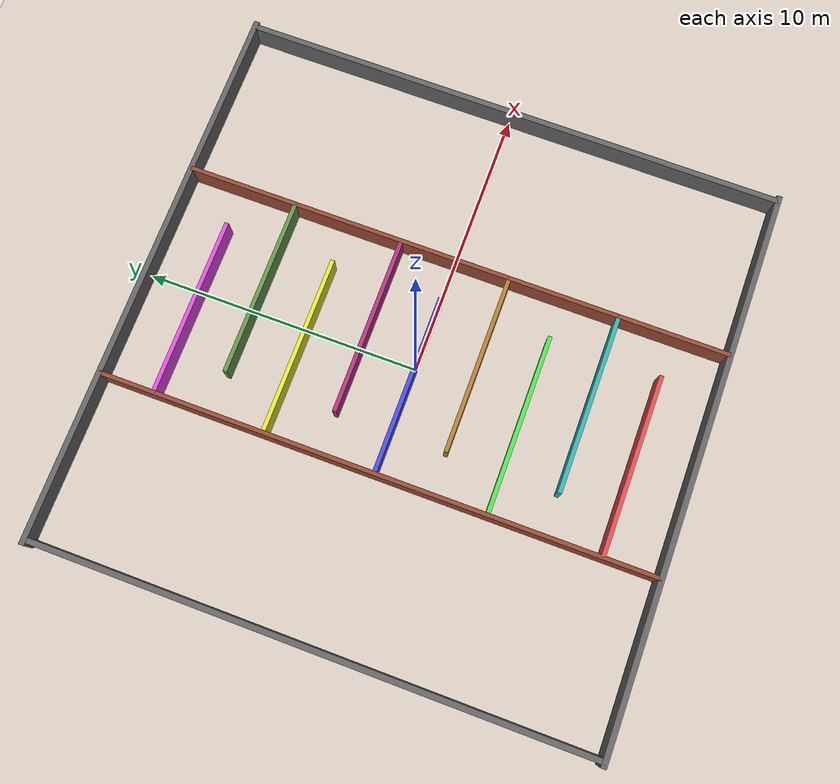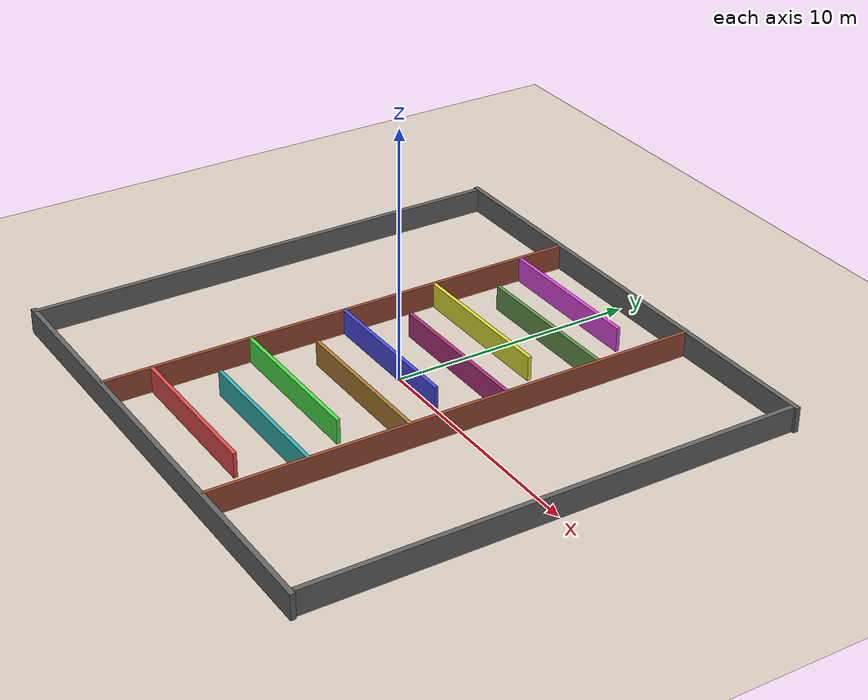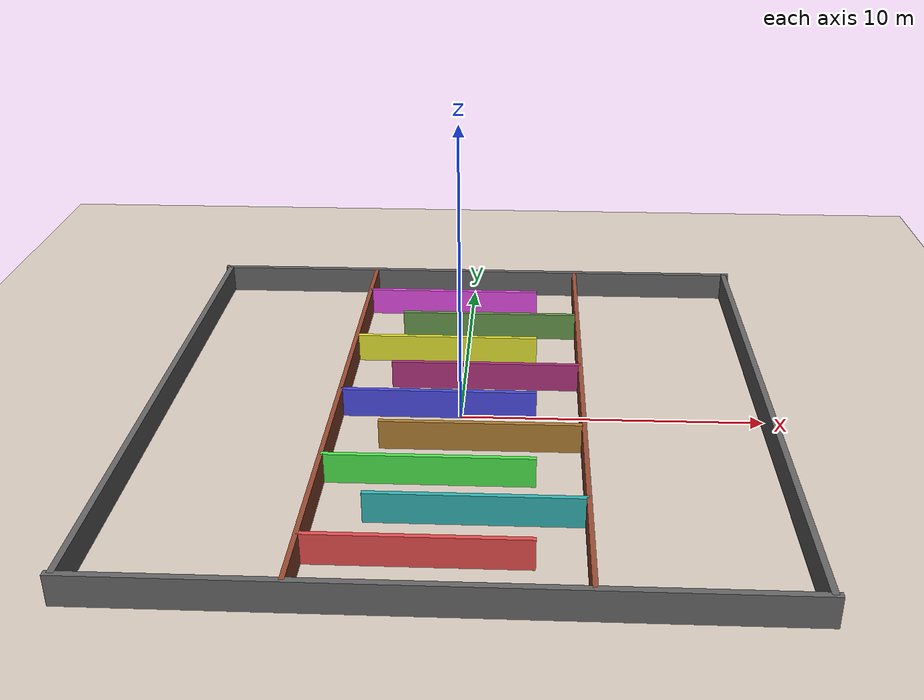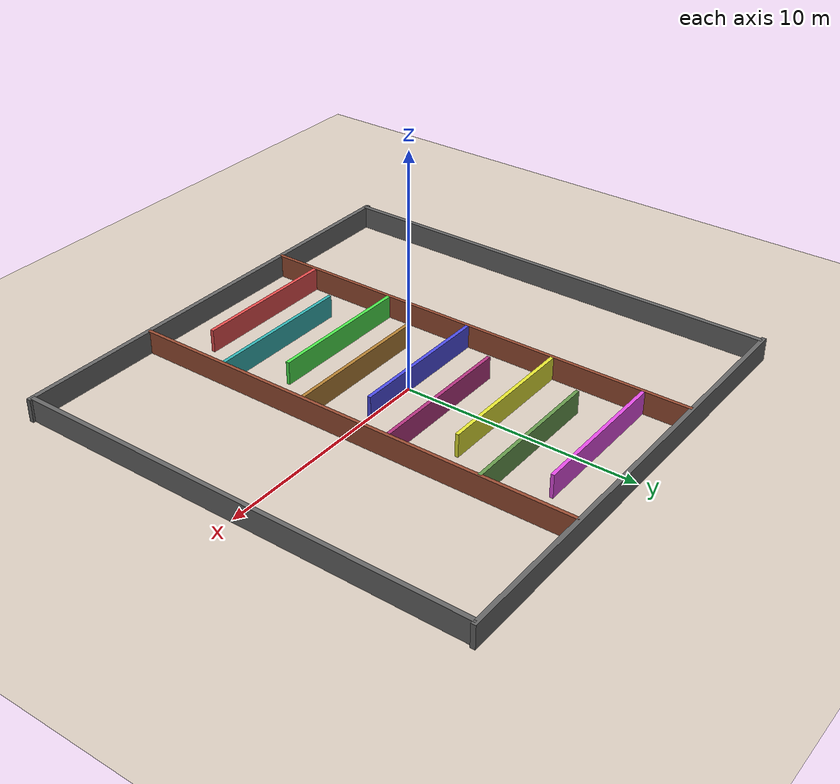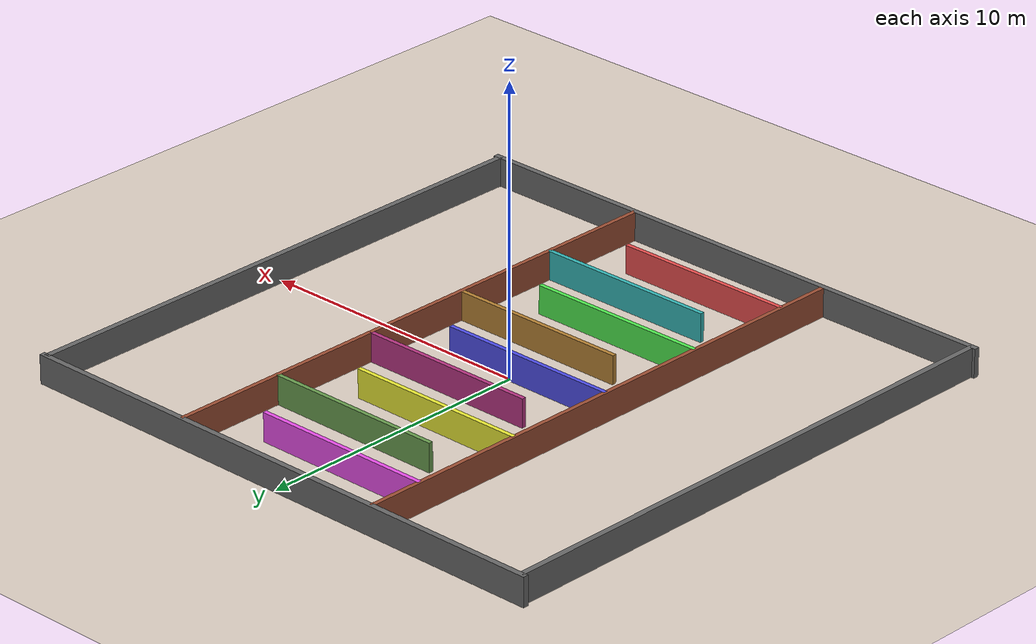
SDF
<?xml version="1.0" ?>
<!-- WORLD: Zigzag — Snaking corridor of zigzag walls -->
<sdf version="1.6">
  <world name="default">
    <physics name="1ms" type="ignored"><max_step_size>0.001</max_step_size><real_time_factor>1.0</real_time_factor></physics>
    <plugin filename="libignition-gazebo-physics-system.so" name="ignition::gazebo::systems::Physics"/>
    <plugin filename="libignition-gazebo-user-commands-system.so" name="ignition::gazebo::systems::UserCommands"/>
    <plugin filename="libignition-gazebo-scene-broadcaster-system.so" name="ignition::gazebo::systems::SceneBroadcaster"/>
    <light type="directional" name="sun"><cast_shadows>true</cast_shadows><pose>0 0 10 0 0 0</pose><diffuse>0.85 0.85 0.85 1</diffuse><specular>0.2 0.2 0.2 1</specular><attenuation><range>1000</range><constant>0.9</constant><linear>0.01</linear><quadratic>0.001</quadratic></attenuation><direction>-0.5 0.1 -0.9</direction></light>
    <model name="ground"><static>true</static><link name="l"><collision name="c"><geometry><plane><normal>0 0 1</normal><size>100 100</size></plane></geometry></collision><visual name="v"><geometry><plane><normal>0 0 1</normal><size>100 100</size></plane></geometry><material><ambient>0.85 0.8 0.75 1</ambient><diffuse>0.85 0.8 0.75 1</diffuse></material></visual></link></model>
    <model name="wn"><static>true</static><pose>0 10 0.5 0 0 0</pose><link name="l"><collision name="c"><geometry><box><size>20.4 0.2 1</size></box></geometry></collision><visual name="v"><geometry><box><size>20.4 0.2 1</size></box></geometry><material><ambient>0.4 0.4 0.4 1</ambient><diffuse>0.4 0.4 0.4 1</diffuse></material></visual></link></model>
    <model name="ws"><static>true</static><pose>0 -10 0.5 0 0 0</pose><link name="l"><collision name="c"><geometry><box><size>20.4 0.2 1</size></box></geometry></collision><visual name="v"><geometry><box><size>20.4 0.2 1</size></box></geometry><material><ambient>0.4 0.4 0.4 1</ambient><diffuse>0.4 0.4 0.4 1</diffuse></material></visual></link></model>
    <model name="we"><static>true</static><pose>10 0 0.5 0 0 0</pose><link name="l"><collision name="c"><geometry><box><size>0.2 20 1</size></box></geometry></collision><visual name="v"><geometry><box><size>0.2 20 1</size></box></geometry><material><ambient>0.4 0.4 0.4 1</ambient><diffuse>0.4 0.4 0.4 1</diffuse></material></visual></link></model>
    <model name="ww"><static>true</static><pose>-10 0 0.5 0 0 0</pose><link name="l"><collision name="c"><geometry><box><size>0.2 20 1</size></box></geometry></collision><visual name="v"><geometry><box><size>0.2 20 1</size></box></geometry><material><ambient>0.4 0.4 0.4 1</ambient><diffuse>0.4 0.4 0.4 1</diffuse></material></visual></link></model>

    <!-- Zigzag walls snaking from south to north, alternating left-right -->
    <!-- Left boundary wall -->
    <model name="lb"><static>true</static><pose>-4 0 0.5 0 0 0</pose><link name="l"><collision name="c"><geometry><box><size>0.15 20 1</size></box></geometry></collision><visual name="v"><geometry><box><size>0.15 20 1</size></box></geometry><material><ambient>0.6 0.3 0.2 1</ambient><diffuse>0.6 0.3 0.2 1</diffuse></material></visual></link></model>
    <!-- Right boundary wall -->
    <model name="rb"><static>true</static><pose>4 0 0.5 0 0 0</pose><link name="l"><collision name="c"><geometry><box><size>0.15 20 1</size></box></geometry></collision><visual name="v"><geometry><box><size>0.15 20 1</size></box></geometry><material><ambient>0.6 0.3 0.2 1</ambient><diffuse>0.6 0.3 0.2 1</diffuse></material></visual></link></model>
    <!-- Zigzag teeth from left wall — extending right with 1.5m gap -->
    <model name="zl1"><static>true</static><pose>-0.75 -8 0.5 0 0 0</pose><link name="l"><collision name="c"><geometry><box><size>6.5 0.15 1</size></box></geometry></collision><visual name="v"><geometry><box><size>6.5 0.15 1</size></box></geometry><material><ambient>0.9 0.3 0.3 1</ambient><diffuse>0.9 0.3 0.3 1</diffuse></material></visual></link></model>
    <model name="zl2"><static>true</static><pose>-0.75 -4 0.5 0 0 0</pose><link name="l"><collision name="c"><geometry><box><size>6.5 0.15 1</size></box></geometry></collision><visual name="v"><geometry><box><size>6.5 0.15 1</size></box></geometry><material><ambient>0.3 0.9 0.3 1</ambient><diffuse>0.3 0.9 0.3 1</diffuse></material></visual></link></model>
    <model name="zl3"><static>true</static><pose>-0.75 0 0.5 0 0 0</pose><link name="l"><collision name="c"><geometry><box><size>6.5 0.15 1</size></box></geometry></collision><visual name="v"><geometry><box><size>6.5 0.15 1</size></box></geometry><material><ambient>0.3 0.3 0.9 1</ambient><diffuse>0.3 0.3 0.9 1</diffuse></material></visual></link></model>
    <model name="zl4"><static>true</static><pose>-0.75 4 0.5 0 0 0</pose><link name="l"><collision name="c"><geometry><box><size>6.5 0.15 1</size></box></geometry></collision><visual name="v"><geometry><box><size>6.5 0.15 1</size></box></geometry><material><ambient>0.9 0.9 0.2 1</ambient><diffuse>0.9 0.9 0.2 1</diffuse></material></visual></link></model>
    <model name="zl5"><static>true</static><pose>-0.75 8 0.5 0 0 0</pose><link name="l"><collision name="c"><geometry><box><size>6.5 0.15 1</size></box></geometry></collision><visual name="v"><geometry><box><size>6.5 0.15 1</size></box></geometry><material><ambient>0.9 0.3 0.9 1</ambient><diffuse>0.9 0.3 0.9 1</diffuse></material></visual></link></model>
    <!-- Zigzag teeth from right wall — extending left with 1.5m gap -->
    <model name="zr1"><static>true</static><pose>0.75 -6 0.5 0 0 0</pose><link name="l"><collision name="c"><geometry><box><size>6.5 0.15 1</size></box></geometry></collision><visual name="v"><geometry><box><size>6.5 0.15 1</size></box></geometry><material><ambient>0.2 0.7 0.7 1</ambient><diffuse>0.2 0.7 0.7 1</diffuse></material></visual></link></model>
    <model name="zr2"><static>true</static><pose>0.75 -2 0.5 0 0 0</pose><link name="l"><collision name="c"><geometry><box><size>6.5 0.15 1</size></box></geometry></collision><visual name="v"><geometry><box><size>6.5 0.15 1</size></box></geometry><material><ambient>0.7 0.5 0.2 1</ambient><diffuse>0.7 0.5 0.2 1</diffuse></material></visual></link></model>
    <model name="zr3"><static>true</static><pose>0.75 2 0.5 0 0 0</pose><link name="l"><collision name="c"><geometry><box><size>6.5 0.15 1</size></box></geometry></collision><visual name="v"><geometry><box><size>6.5 0.15 1</size></box></geometry><material><ambient>0.7 0.2 0.5 1</ambient><diffuse>0.7 0.2 0.5 1</diffuse></material></visual></link></model>
    <model name="zr4"><static>true</static><pose>0.75 6 0.5 0 0 0</pose><link name="l"><collision name="c"><geometry><box><size>6.5 0.15 1</size></box></geometry></collision><visual name="v"><geometry><box><size>6.5 0.15 1</size></box></geometry><material><ambient>0.4 0.6 0.3 1</ambient><diffuse>0.4 0.6 0.3 1</diffuse></material></visual></link></model>
  </world>
</sdf>
